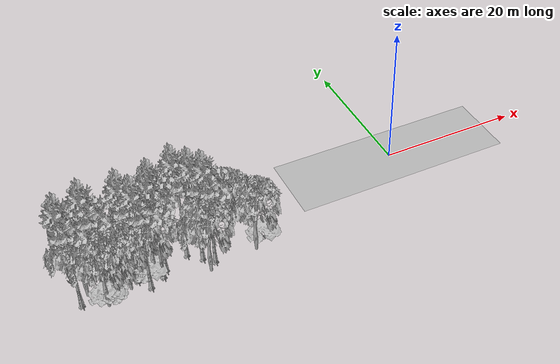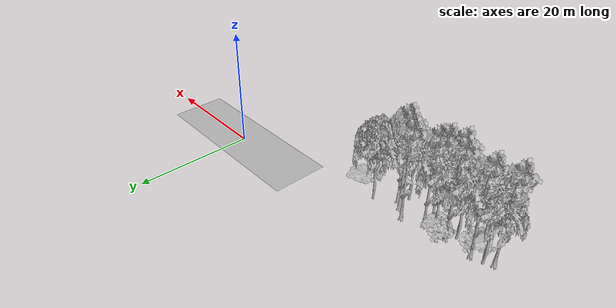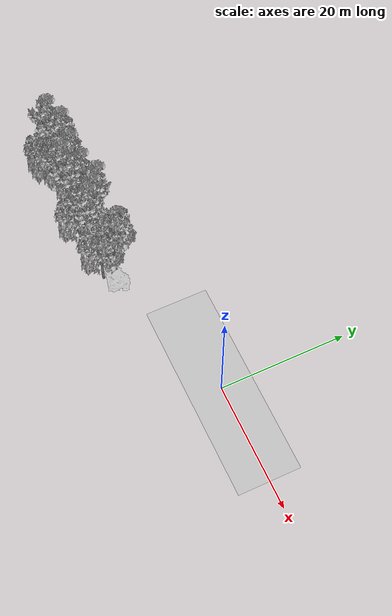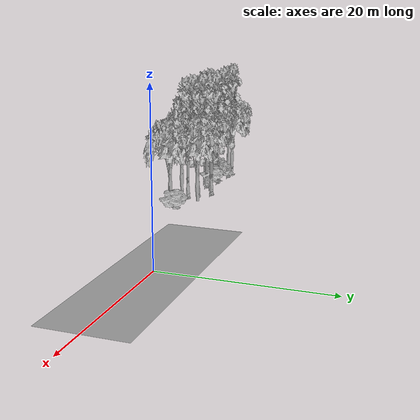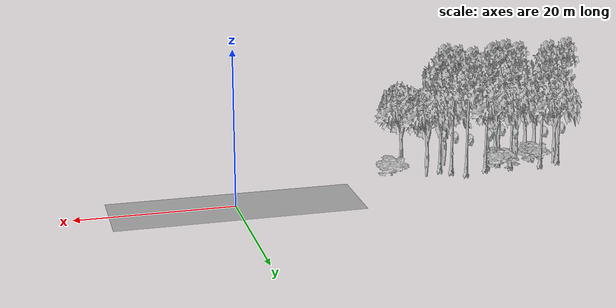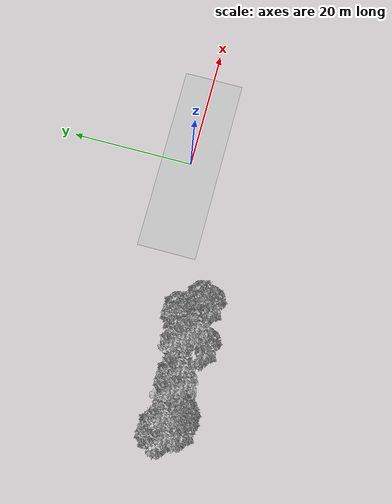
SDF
<sdf version="1.7">
 <world name="default">
  <model name="ground_plane">
   <static>1</static>
   <link name="link">
    <collision name="collision">
     <pose>-50 0 0 0 -0 0</pose>
     <geometry><plane><normal>0 0 1</normal><size>100 100</size></plane></geometry>
     <surface><contact><ode><min_depth>0.01</min_depth><max_vel>0</max_vel></ode></contact></surface>
    </collision>
    <visual name="grass">
     <cast_shadows>0</cast_shadows>
     <geometry>
      <mesh>
       <scale>0.5814285714285714 0.18142857142857144 0.1</scale>
       <uri>file://grass_plane/meshes/grass_plane.dae</uri>
      </mesh>
     </geometry>
    </visual>
   </link>
  </model>
  <model name="Tree 28">
   <static>1</static>
   <pose>-43.30894276052413 -8.165332301098179 0 1.57079 -0 0</pose>
   <link name="link">
    <collision name="collision">
     <geometry><mesh><scale>3 2 3</scale><uri>model://tree_3/meshes/tree_3.obj</uri></mesh></geometry>
    </collision>
    <visual name="visual">
     <geometry><mesh><scale>3 2 3</scale><uri>model://tree_3/meshes/tree_3.obj</uri></mesh></geometry>
    </visual>
   </link>
  </model>
  <model name="Tree 58">
   <static>1</static>
   <pose>-38.675342551354866 -6.033671075337548 0 1.57079 -0 0</pose>
   <link name="link">
    <collision name="collision">
     <geometry><mesh><scale>4 2.5 4</scale><uri>model://tree_1/meshes/tree_1.obj</uri></mesh></geometry>
    </collision>
    <visual name="visual">
     <geometry><mesh><scale>4 2.5 4</scale><uri>model://tree_1/meshes/tree_1.obj</uri></mesh></geometry>
    </visual>
   </link>
  </model>
  <model name="Tree 63">
   <static>1</static>
   <pose>-37.13585800005851 -6.87857906247006 0 1.57079 -0 0</pose>
   <link name="link">
    <collision name="collision">
     <geometry><mesh><scale>3.5 5 3.5</scale><uri>model://tree_2/meshes/tree_2.obj</uri></mesh></geometry>
    </collision>
    <visual name="visual">
     <geometry><mesh><scale>3.5 5 3.5</scale><uri>model://tree_2/meshes/tree_2.obj</uri></mesh></geometry>
    </visual>
   </link>
  </model>
  <model name="Tree 85">
   <static>1</static>
   <pose>-26.847470740816135 -5.207100573781453 0 1.57079 -0 0</pose>
   <link name="link">
    <collision name="collision">
     <geometry><mesh><scale>3.5 5 3.5</scale><uri>model://tree_2/meshes/tree_2.obj</uri></mesh></geometry>
    </collision>
    <visual name="visual">
     <geometry><mesh><scale>3.5 5 3.5</scale><uri>model://tree_2/meshes/tree_2.obj</uri></mesh></geometry>
    </visual>
   </link>
  </model>
  <model name="Tree 93">
   <static>1</static>
   <pose>-36.20978767462765 -7.295697987502619 0 1.57079 -0 0</pose>
   <link name="link">
    <collision name="collision">
     <geometry><mesh><scale>3.5 5 3.5</scale><uri>model://tree_9/meshes/tree_9.obj</uri></mesh></geometry>
    </collision>
    <visual name="visual">
     <geometry><mesh><scale>3.5 5 3.5</scale><uri>model://tree_9/meshes/tree_9.obj</uri></mesh></geometry>
    </visual>
   </link>
  </model>
  <model name="Tree 139">
   <static>1</static>
   <pose>-30.782011745449495 -6.6041466942079 0 1.57079 -0 0</pose>
   <link name="link">
    <collision name="collision">
     <geometry><mesh><scale>3.5 5 3.5</scale><uri>model://tree_9/meshes/tree_9.obj</uri></mesh></geometry>
    </collision>
    <visual name="visual">
     <geometry><mesh><scale>3.5 5 3.5</scale><uri>model://tree_9/meshes/tree_9.obj</uri></mesh></geometry>
    </visual>
   </link>
  </model>
  <model name="Tree 161">
   <static>1</static>
   <pose>-30.689902799943503 -9.10571216915643 0 1.57079 -0 0</pose>
   <link name="link">
    <collision name="collision">
     <geometry><mesh><scale>3.5 5 3.5</scale><uri>model://tree_2/meshes/tree_2.obj</uri></mesh></geometry>
    </collision>
    <visual name="visual">
     <geometry><mesh><scale>3.5 5 3.5</scale><uri>model://tree_2/meshes/tree_2.obj</uri></mesh></geometry>
    </visual>
   </link>
  </model>
  <model name="Tree 176">
   <static>1</static>
   <pose>-43.47134548992248 -6.22673294921168 0 1.57079 -0 0</pose>
   <link name="link">
    <collision name="collision">
     <geometry><mesh><scale>3.5 5 3.5</scale><uri>model://tree_9/meshes/tree_9.obj</uri></mesh></geometry>
    </collision>
    <visual name="visual">
     <geometry><mesh><scale>3.5 5 3.5</scale><uri>model://tree_9/meshes/tree_9.obj</uri></mesh></geometry>
    </visual>
   </link>
  </model>
  <model name="Tree 192">
   <static>1</static>
   <pose>-42.73977988287714 -7.726495342318092 0 1.57079 -0 0</pose>
   <link name="link">
    <collision name="collision">
     <geometry><mesh><scale>4 2.5 4</scale><uri>model://tree_1/meshes/tree_1.obj</uri></mesh></geometry>
    </collision>
    <visual name="visual">
     <geometry><mesh><scale>4 2.5 4</scale><uri>model://tree_1/meshes/tree_1.obj</uri></mesh></geometry>
    </visual>
   </link>
  </model>
  <model name="Tree 215">
   <static>1</static>
   <pose>-46.464341529789536 -7.258117994981749 0 1.57079 -0 0</pose>
   <link name="link">
    <collision name="collision">
     <geometry><mesh><scale>3.5 5 3.5</scale><uri>model://tree_9/meshes/tree_9.obj</uri></mesh></geometry>
    </collision>
    <visual name="visual">
     <geometry><mesh><scale>3.5 5 3.5</scale><uri>model://tree_9/meshes/tree_9.obj</uri></mesh></geometry>
    </visual>
   </link>
  </model>
  <model name="Tree 219">
   <static>1</static>
   <pose>-42.264810429827776 -8.810046443608432 0 1.57079 -0 0</pose>
   <link name="link">
    <collision name="collision">
     <geometry><mesh><scale>3.5 5 3.5</scale><uri>model://tree_2/meshes/tree_2.obj</uri></mesh></geometry>
    </collision>
    <visual name="visual">
     <geometry><mesh><scale>3.5 5 3.5</scale><uri>model://tree_2/meshes/tree_2.obj</uri></mesh></geometry>
    </visual>
   </link>
  </model>
  <model name="Tree 284">
   <static>1</static>
   <pose>-32.35550317205644 -5.123863629273391 0 1.57079 -0 0</pose>
   <link name="link">
    <collision name="collision">
     <geometry><mesh><scale>3.5 5 3.5</scale><uri>model://tree_9/meshes/tree_9.obj</uri></mesh></geometry>
    </collision>
    <visual name="visual">
     <geometry><mesh><scale>3.5 5 3.5</scale><uri>model://tree_9/meshes/tree_9.obj</uri></mesh></geometry>
    </visual>
   </link>
  </model>
  <model name="Tree 296">
   <static>1</static>
   <pose>-45.452421637421814 -6.24158393571585 0 1.57079 -0 0</pose>
   <link name="link">
    <collision name="collision">
     <geometry><mesh><scale>3.5 5 3.5</scale><uri>model://tree_2/meshes/tree_2.obj</uri></mesh></geometry>
    </collision>
    <visual name="visual">
     <geometry><mesh><scale>3.5 5 3.5</scale><uri>model://tree_2/meshes/tree_2.obj</uri></mesh></geometry>
    </visual>
   </link>
  </model>
  <model name="Tree 353">
   <static>1</static>
   <pose>-29.536702088127814 -7.718573881714356 0 1.57079 -0 0</pose>
   <link name="link">
    <collision name="collision">
     <geometry><mesh><scale>3.5 5 3.5</scale><uri>model://tree_9/meshes/tree_9.obj</uri></mesh></geometry>
    </collision>
    <visual name="visual">
     <geometry><mesh><scale>3.5 5 3.5</scale><uri>model://tree_9/meshes/tree_9.obj</uri></mesh></geometry>
    </visual>
   </link>
  </model>
  <model name="Tree 391">
   <static>1</static>
   <pose>-39.27235284832143 -6.517135806031133 0 1.57079 -0 0</pose>
   <link name="link">
    <collision name="collision">
     <geometry><mesh><scale>3.5 5 3.5</scale><uri>model://tree_9/meshes/tree_9.obj</uri></mesh></geometry>
    </collision>
    <visual name="visual">
     <geometry><mesh><scale>3.5 5 3.5</scale><uri>model://tree_9/meshes/tree_9.obj</uri></mesh></geometry>
    </visual>
   </link>
  </model>
  <model name="Tree 395">
   <static>1</static>
   <pose>-38.12133489553548 -8.229207828312505 0 1.57079 -0 0</pose>
   <link name="link">
    <collision name="collision">
     <geometry><mesh><scale>3.5 5 3.5</scale><uri>model://tree_9/meshes/tree_9.obj</uri></mesh></geometry>
    </collision>
    <visual name="visual">
     <geometry><mesh><scale>3.5 5 3.5</scale><uri>model://tree_9/meshes/tree_9.obj</uri></mesh></geometry>
    </visual>
   </link>
  </model>
  <model name="Tree 400">
   <static>1</static>
   <pose>-24.217565623232638 -8.230278199033727 0 1.57079 -0 0</pose>
   <link name="link">
    <collision name="collision">
     <geometry><mesh><scale>3.5 5 3.5</scale><uri>model://tree_2/meshes/tree_2.obj</uri></mesh></geometry>
    </collision>
    <visual name="visual">
     <geometry><mesh><scale>3.5 5 3.5</scale><uri>model://tree_2/meshes/tree_2.obj</uri></mesh></geometry>
    </visual>
   </link>
  </model>
  <model name="Tree 401">
   <static>1</static>
   <pose>-43.65193305938243 -8.929824472155923 0 1.57079 -0 0</pose>
   <link name="link">
    <collision name="collision">
     <geometry><mesh><scale>3.5 5 3.5</scale><uri>model://tree_2/meshes/tree_2.obj</uri></mesh></geometry>
    </collision>
    <visual name="visual">
     <geometry><mesh><scale>3.5 5 3.5</scale><uri>model://tree_2/meshes/tree_2.obj</uri></mesh></geometry>
    </visual>
   </link>
  </model>
  <model name="Tree 402">
   <static>1</static>
   <pose>-37.683568255946405 -6.870909247013547 0 1.57079 -0 0</pose>
   <link name="link">
    <collision name="collision">
     <geometry><mesh><scale>3 2 3</scale><uri>model://tree_3/meshes/tree_3.obj</uri></mesh></geometry>
    </collision>
    <visual name="visual">
     <geometry><mesh><scale>3 2 3</scale><uri>model://tree_3/meshes/tree_3.obj</uri></mesh></geometry>
    </visual>
   </link>
  </model>
  <model name="Tree 439">
   <static>1</static>
   <pose>-40.45435250726653 -7.553336790847881 0 1.57079 -0 0</pose>
   <link name="link">
    <collision name="collision">
     <geometry><mesh><scale>3.5 5 3.5</scale><uri>model://tree_2/meshes/tree_2.obj</uri></mesh></geometry>
    </collision>
    <visual name="visual">
     <geometry><mesh><scale>3.5 5 3.5</scale><uri>model://tree_2/meshes/tree_2.obj</uri></mesh></geometry>
    </visual>
   </link>
  </model>
  <model name="Tree 442">
   <static>1</static>
   <pose>-35.54273204397645 -6.364188181413491 0 1.57079 -0 0</pose>
   <link name="link">
    <collision name="collision">
     <geometry><mesh><scale>3.5 5 3.5</scale><uri>model://tree_9/meshes/tree_9.obj</uri></mesh></geometry>
    </collision>
    <visual name="visual">
     <geometry><mesh><scale>3.5 5 3.5</scale><uri>model://tree_9/meshes/tree_9.obj</uri></mesh></geometry>
    </visual>
   </link>
  </model>
  <model name="Tree 492">
   <static>1</static>
   <pose>-22.481220077957097 -7.015136307912697 0 1.57079 -0 0</pose>
   <link name="link">
    <collision name="collision">
     <geometry><mesh><scale>3 2 3</scale><uri>model://tree_3/meshes/tree_3.obj</uri></mesh></geometry>
    </collision>
    <visual name="visual">
     <geometry><mesh><scale>3 2 3</scale><uri>model://tree_3/meshes/tree_3.obj</uri></mesh></geometry>
    </visual>
   </link>
  </model>
 </world>
</sdf>
